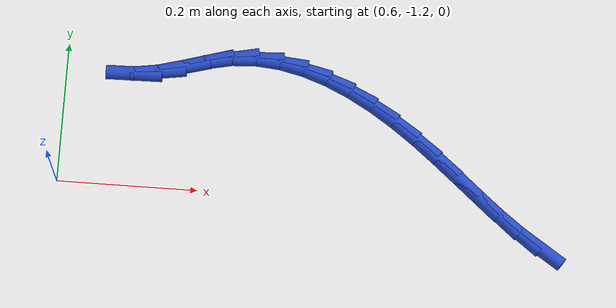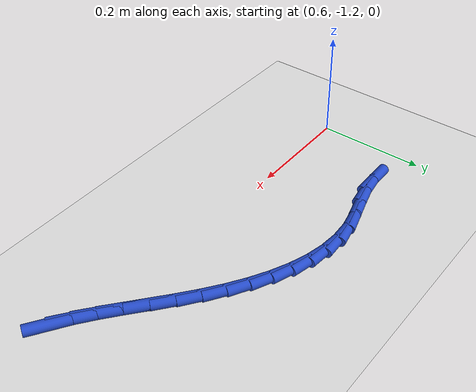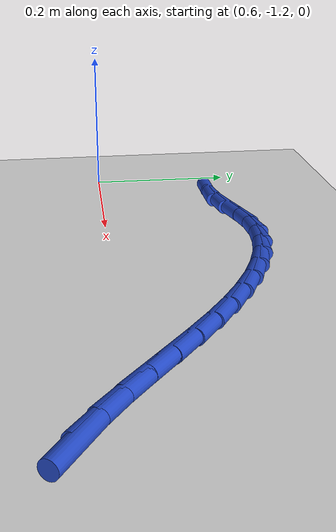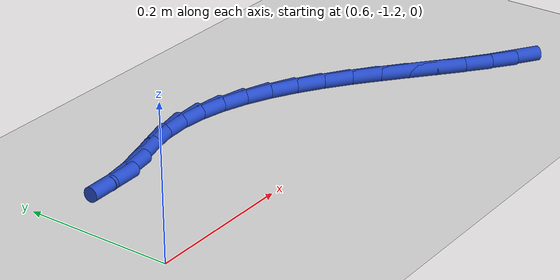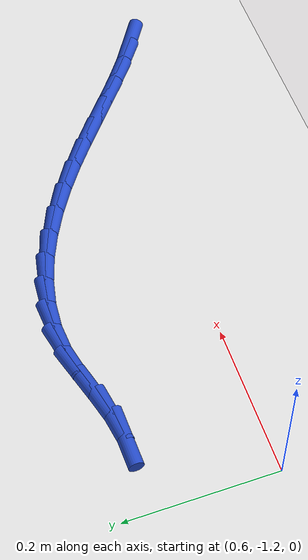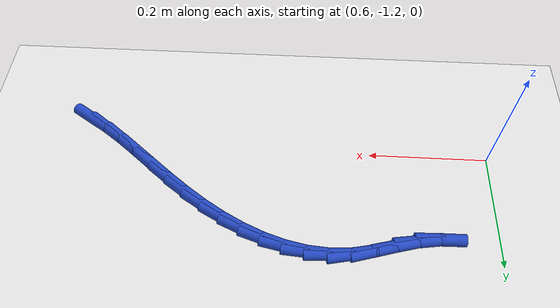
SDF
<sdf version="1.6">
 <world name="default">
  <model name="ground_plane">
   <static>1</static>
   <link name="link">
    <collision name="collision">
     <geometry><plane><normal>0 0 1</normal><size>100 100</size></plane></geometry>
     <surface><friction><ode><mu>100</mu><mu2>50</mu2></ode></friction></surface>
    </collision>
    <visual name="visual">
     <cast_shadows>0</cast_shadows>
     <geometry><plane><normal>0 0 1</normal><size>100 100</size></plane></geometry>
     <material>
      <script><uri>file://media/materials/scripts/gazebo.material</uri><name>Gazebo/WhiteGlow</name></script>
     </material>
    </visual>
   </link>
  </model>
  <model name="line">
   <link name="link_166">
    <pose>1.2877727756051396 -1.2472616162267534 0.01 0 1.57 -0.5785412361499463</pose>
    <collision name="collision">
     <geometry><cylinder><radius>0.01</radius><length>0.08</length></cylinder></geometry>
    </collision>
    <visual name="visual">
     <material>
      <script><name>Gazebo/Blue</name><uri>file://media/materials/scripts/gazebo.material</uri></script>
     </material>
     <geometry><cylinder><radius>0.01</radius><length>0.08</length></cylinder></geometry>
    </visual>
   </link>
   <link name="link_167">
    <pose>1.2580112505140415 -1.2278247955511326 0.01 0 1.57 -0.6434333960647372</pose>
    <collision name="collision">
     <geometry><cylinder><radius>0.01</radius><length>0.08</length></cylinder></geometry>
    </collision>
    <visual name="visual">
     <material>
      <script><name>Gazebo/Blue</name><uri>file://media/materials/scripts/gazebo.material</uri></script>
     </material>
     <geometry><cylinder><radius>0.01</radius><length>0.08</length></cylinder></geometry>
    </visual>
   </link>
   <link name="link_168">
    <pose>1.2281306804255119 -1.2054175292225282 0.01 0 1.57 -0.6820034745993996</pose>
    <collision name="collision">
     <geometry><cylinder><radius>0.01</radius><length>0.08</length></cylinder></geometry>
    </collision>
    <visual name="visual">
     <material>
      <script><name>Gazebo/Blue</name><uri>file://media/materials/scripts/gazebo.material</uri></script>
     </material>
     <geometry><cylinder><radius>0.01</radius><length>0.08</length></cylinder></geometry>
    </visual>
   </link>
   <link name="link_169">
    <pose>1.1980140549217384 -1.1809634205031405 0.01 0 1.57 -0.6983289040076829</pose>
    <collision name="collision">
     <geometry><cylinder><radius>0.01</radius><length>0.08</length></cylinder></geometry>
    </collision>
    <visual name="visual">
     <material>
      <script><name>Gazebo/Blue</name><uri>file://media/materials/scripts/gazebo.material</uri></script>
     </material>
     <geometry><cylinder><radius>0.01</radius><length>0.08</length></cylinder></geometry>
    </visual>
   </link>
   <link name="link_170">
    <pose>1.167544363584911 -1.1553860726551723 0.01 0 1.57 -0.6946208425252103</pose>
    <collision name="collision">
     <geometry><cylinder><radius>0.01</radius><length>0.08</length></cylinder></geometry>
    </collision>
    <visual name="visual">
     <material>
      <script><name>Gazebo/Blue</name><uri>file://media/materials/scripts/gazebo.material</uri></script>
     </material>
     <geometry><cylinder><radius>0.01</radius><length>0.08</length></cylinder></geometry>
    </visual>
   </link>
   <link name="link_171">
    <pose>1.1366045959972177 -1.129609088940824 0.01 0 1.57 -0.671474142130014</pose>
    <collision name="collision">
     <geometry><cylinder><radius>0.01</radius><length>0.08</length></cylinder></geometry>
    </collision>
    <visual name="visual">
     <material>
      <script><name>Gazebo/Blue</name><uri>file://media/materials/scripts/gazebo.material</uri></script>
     </material>
     <geometry><cylinder><radius>0.01</radius><length>0.08</length></cylinder></geometry>
    </visual>
   </link>
   <link name="link_172">
    <pose>1.1050777417408473 -1.1045560726222965 0.01 0 1.57 -0.6287394783897218</pose>
    <collision name="collision">
     <geometry><cylinder><radius>0.01</radius><length>0.08</length></cylinder></geometry>
    </collision>
    <visual name="visual">
     <material>
      <script><name>Gazebo/Blue</name><uri>file://media/materials/scripts/gazebo.material</uri></script>
     </material>
     <geometry><cylinder><radius>0.01</radius><length>0.08</length></cylinder></geometry>
    </visual>
   </link>
   <link name="link_173">
    <pose>1.072858112638507 -1.0811264134215213 0.01 0 1.57 -0.5719905847013971</pose>
    <collision name="collision">
     <geometry><cylinder><radius>0.01</radius><length>0.08</length></cylinder></geometry>
    </collision>
    <visual name="visual">
     <material>
      <script><name>Gazebo/Blue</name><uri>file://media/materials/scripts/gazebo.material</uri></script>
     </material>
     <geometry><cylinder><radius>0.01</radius><length>0.08</length></cylinder></geometry>
    </visual>
   </link>
   <link name="link_174">
    <pose>1.0399656306172724 -1.0599508735467502 0.01 0 1.57 -0.5040152763308258</pose>
    <collision name="collision">
     <geometry><cylinder><radius>0.01</radius><length>0.08</length></cylinder></geometry>
    </collision>
    <visual name="visual">
     <material>
      <script><name>Gazebo/Blue</name><uri>file://media/materials/scripts/gazebo.material</uri></script>
     </material>
     <geometry><cylinder><radius>0.01</radius><length>0.08</length></cylinder></geometry>
    </visual>
   </link>
   <link name="link_175">
    <pose>1.006498490551669 -1.041492822086313 0.01 0 1.57 -0.42299214522537465</pose>
    <collision name="collision">
     <geometry><cylinder><radius>0.01</radius><length>0.08</length></cylinder></geometry>
    </collision>
    <visual name="visual">
     <material>
      <script><name>Gazebo/Blue</name><uri>file://media/materials/scripts/gazebo.material</uri></script>
     </material>
     <geometry><cylinder><radius>0.01</radius><length>0.08</length></cylinder></geometry>
    </visual>
   </link>
   <link name="link_176">
    <pose>0.9725560730487889 -1.0262130923421688 0.01 0 1.57 -0.3270160680916458</pose>
    <collision name="collision">
     <geometry><cylinder><radius>0.01</radius><length>0.08</length></cylinder></geometry>
    </collision>
    <visual name="visual">
     <material>
      <script><name>Gazebo/Blue</name><uri>file://media/materials/scripts/gazebo.material</uri></script>
     </material>
     <geometry><cylinder><radius>0.01</radius><length>0.08</length></cylinder></geometry>
    </visual>
   </link>
   <link name="link_177">
    <pose>0.9382377587157247 -1.0145725176162748 0.01 0 1.57 -0.21461185143397016</pose>
    <collision name="collision">
     <geometry><cylinder><radius>0.01</radius><length>0.08</length></cylinder></geometry>
    </collision>
    <visual name="visual">
     <material>
      <script><name>Gazebo/Blue</name><uri>file://media/materials/scripts/gazebo.material</uri></script>
     </material>
     <geometry><cylinder><radius>0.01</radius><length>0.08</length></cylinder></geometry>
    </visual>
   </link>
   <link name="link_178">
    <pose>0.9036429281595677 -1.0070319312105884 0.01 0 1.57 -0.08548561022159773</pose>
    <collision name="collision">
     <geometry><cylinder><radius>0.01</radius><length>0.08</length></cylinder></geometry>
    </collision>
    <visual name="visual">
     <material>
      <script><name>Gazebo/Blue</name><uri>file://media/materials/scripts/gazebo.material</uri></script>
     </material>
     <geometry><cylinder><radius>0.01</radius><length>0.08</length></cylinder></geometry>
    </visual>
   </link>
   <link name="link_179">
    <pose>0.8688709619874119 -1.0040521664270685 0.01 0 1.57 0.058524381568007364</pose>
    <collision name="collision">
     <geometry><cylinder><radius>0.01</radius><length>0.08</length></cylinder></geometry>
    </collision>
    <visual name="visual">
     <material>
      <script><name>Gazebo/Blue</name><uri>file://media/materials/scripts/gazebo.material</uri></script>
     </material>
     <geometry><cylinder><radius>0.01</radius><length>0.08</length></cylinder></geometry>
    </visual>
   </link>
   <link name="link_180">
    <pose>0.8340212408063487 -1.006094056567672 0.01 0 1.57 0.20624971274044335</pose>
    <collision name="collision">
     <geometry><cylinder><radius>0.01</radius><length>0.08</length></cylinder></geometry>
    </collision>
    <visual name="visual">
     <material>
      <script><name>Gazebo/Blue</name><uri>file://media/materials/scripts/gazebo.material</uri></script>
     </material>
     <geometry><cylinder><radius>0.01</radius><length>0.08</length></cylinder></geometry>
    </visual>
   </link>
   <link name="link_181">
    <pose>0.7991980827343601 -1.0133799281867126 0.01 0 1.57 0.286721584400474</pose>
    <collision name="collision">
     <geometry><cylinder><radius>0.01</radius><length>0.08</length></cylinder></geometry>
    </collision>
    <visual name="visual">
     <material>
      <script><name>Gazebo/Blue</name><uri>file://media/materials/scripts/gazebo.material</uri></script>
     </material>
     <geometry><cylinder><radius>0.01</radius><length>0.08</length></cylinder></geometry>
    </visual>
   </link>
   <link name="link_182">
    <pose>0.7645583635397664 -1.0235933075142716 0.01 0 1.57 0.26476727923964005</pose>
    <collision name="collision">
     <geometry><cylinder><radius>0.01</radius><length>0.08</length></cylinder></geometry>
    </collision>
    <visual name="visual">
     <material>
      <script><name>Gazebo/Blue</name><uri>file://media/materials/scripts/gazebo.material</uri></script>
     </material>
     <geometry><cylinder><radius>0.01</radius><length>0.08</length></cylinder></geometry>
    </visual>
   </link>
   <link name="link_183">
    <pose>0.7302907016137907 -1.0328843915545647 0.01 0 1.57 0.15198406517003876</pose>
    <collision name="collision">
     <geometry><cylinder><radius>0.01</radius><length>0.08</length></cylinder></geometry>
    </collision>
    <visual name="visual">
     <material>
      <script><name>Gazebo/Blue</name><uri>file://media/materials/scripts/gazebo.material</uri></script>
     </material>
     <geometry><cylinder><radius>0.01</radius><length>0.08</length></cylinder></geometry>
    </visual>
   </link>
   <link name="link_184">
    <pose>0.6965557465610143 -1.0380514131759142 0.01 0 1.57 0.018162940571338892</pose>
    <collision name="collision">
     <geometry><cylinder><radius>0.01</radius><length>0.08</length></cylinder></geometry>
    </collision>
    <visual name="visual">
     <material>
      <script><name>Gazebo/Blue</name><uri>file://media/materials/scripts/gazebo.material</uri></script>
     </material>
     <geometry><cylinder><radius>0.01</radius><length>0.08</length></cylinder></geometry>
    </visual>
   </link>
  </model>
 </world>
</sdf>
